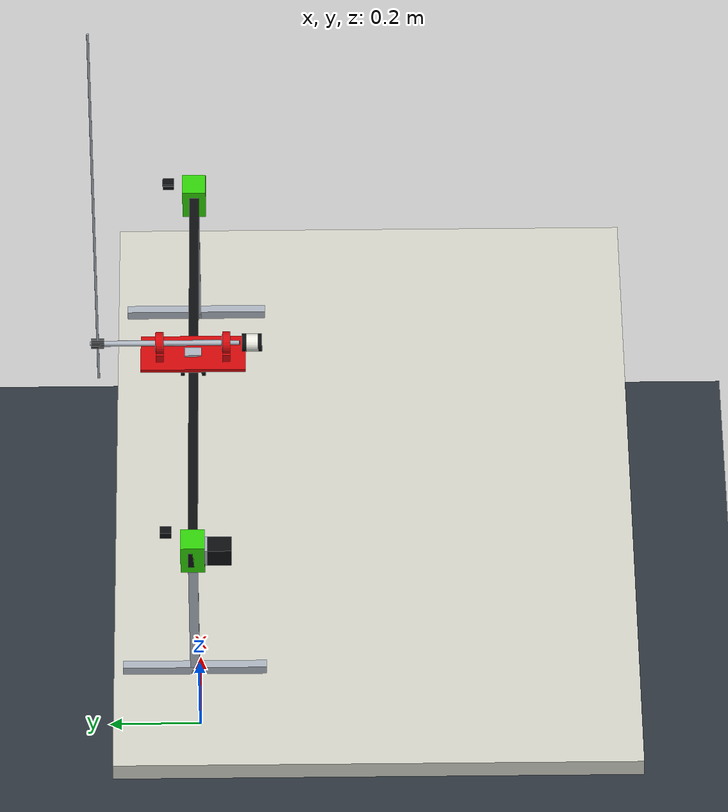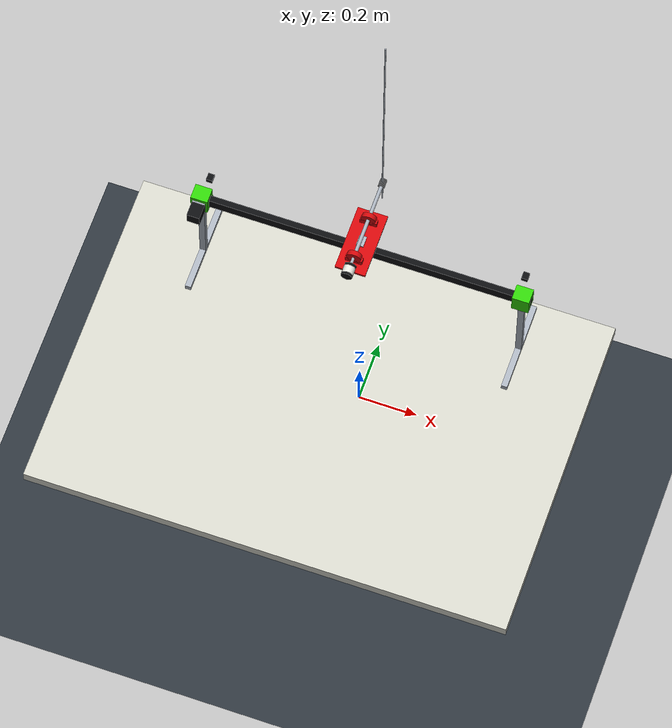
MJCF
<mujoco model="Pendolo reale su cinghia - quote misurate e stime esplicite">
  <!-- SI: metri, kg, secondi. MISURATI: bracci dal centro perno 0.877 / 0.100 m; diametro asta 0.005 m; diametro esterno raccordo nero 0.022 m (cavo, stampato 3D); corsa fra interventi 0.924 m. -->
  <compiler angle="radian" inertiafromgeom="true" />
  <option timestep=".002" gravity="0 0 -9.81" integrator="implicitfast">
    <flag filterparent="disable" />
  </option>
  <statistic center="0 0 1.05" extent="1.6" />
  <visual>
    <global offwidth="1200" offheight="1000" azimuth="-65" elevation="-15" />
    <headlight ambient=".5 .5 .5" diffuse=".7 .7 .7" />
  </visual>
  <default>
    <geom contype="1" conaffinity="1" friction=".6 .005 .0001" />
  </default>
  <worldbody>
    <light pos="0 1 3" dir="0 -0.2 -1" />
    <geom name="pavimento" type="plane" rgba=".17 .2 .23 1" size="3 3 .05" />
    <!-- Banco e telaio fissi indicativi. Il piano dell asta e davanti al bordo del banco. -->
    <geom name="banco" type="box" rgba=".8 .8 .76 1" pos="0 -.38 .72" size=".8 .55 .02" />
    <geom name="guida" type="box" rgba=".045 .05 .055 1" pos="0 0 1.1" size=".56 .01 .02" />
    <geom name="montante_sinistro" type="box" rgba=".65 .68 .72 1" pos="-0.532 0 .915" size=".01 .01 .175" />
    <geom name="piede_sinistro" type="box" rgba=".65 .68 .72 1" pos="-0.532 0 .75" size=".01 .15 .01" />
    <geom name="supporto_puleggia_sinistro" type="box" rgba=".18 .8 .025 1" pos="-0.532 0 1.1" size=".028 .025 .035" contype="0" conaffinity="0" />
    <geom name="puleggia_sinistro" type="cylinder" rgba=".045 .05 .055 1" fromto="-0.532 -.018 1.1 -0.532 .018 1.1" size=".01528" contype="0" conaffinity="0" />
    <!-- Arresto equivalente: faccia interna a +/-0.512 m; piastra semilarga 0.050 m: contatto a +/-0.462 m. -->
    <geom name="fine_sinistro" type="box" rgba=".045 .05 .055 1" pos="-0.522 .055 1.145" size=".01 .012 .008" />
    <geom name="leva_fine_sinistro" type="box" rgba=".65 .68 .72 1" pos="-0.512 .055 1.148" size=".001 .012 .001" contype="0" conaffinity="0" />
    <geom name="montante_destro" type="box" rgba=".65 .68 .72 1" pos="0.532 0 .915" size=".01 .01 .175" />
    <geom name="piede_destro" type="box" rgba=".65 .68 .72 1" pos="0.532 0 .75" size=".01 .15 .01" />
    <geom name="supporto_puleggia_destro" type="box" rgba=".18 .8 .025 1" pos="0.532 0 1.1" size=".028 .025 .035" contype="0" conaffinity="0" />
    <geom name="puleggia_destro" type="cylinder" rgba=".045 .05 .055 1" fromto="0.532 -.018 1.1 0.532 .018 1.1" size=".01528" contype="0" conaffinity="0" />
    <!-- Arresto equivalente: faccia interna a +/-0.512 m; piastra semilarga 0.050 m: contatto a +/-0.462 m. -->
    <geom name="fine_destro" type="box" rgba=".045 .05 .055 1" pos="0.522 .055 1.145" size=".01 .012 .008" />
    <geom name="leva_fine_destro" type="box" rgba=".65 .68 .72 1" pos="0.512 .055 1.148" size=".001 .012 .001" contype="0" conaffinity="0" />
    <geom name="cinghia_superiore" type="box" rgba=".045 .05 .055 1" pos="0 0 1.11528" size=".532 .003 .0007" contype="0" conaffinity="0" />
    <geom name="cinghia_inferiore" type="box" rgba=".045 .05 .055 1" pos="0 0 1.08472" size=".532 .003 .0007" contype="0" conaffinity="0" />
    <!-- Pulegge visuali: raggio primitivo ~15.28 mm coerente con 48 denti / passo 2 mm in stepper.py; parametri trasmissione ancora provvisori. -->
    <!-- Stepper sul lato X negativo: estremita destra nella vista usata dall utente; montaggio dietro la guida, Y negativo. -->
    <geom name="stepper_visuale" type="box" rgba=".045 .05 .055 1" pos="-.532 -.055 1.1" size=".021 .025 .021" contype="0" conaffinity="0" />
    <geom name="flangia_stepper" type="box" rgba=".65 .68 .72 1" pos="-.532 -.027 1.1" size=".021 .003 .021" contype="0" conaffinity="0" />
    <body name="carrello" pos="0 0 1.145">
      <joint name="scorrimento" type="slide" axis="1 0 0" limited="true" range="-.462 .462" damping=".1" />
      <!-- Masse traslanti senza rotazione: piastra alleggerita 90 g; supporti 2x25 g; cuscinetti 2x30 g; ruote 4x12 g; encoder/staffa 90 g; fissaggi 25 g. Totale 363 g. -->
      <geom name="corpo_carrello" type="box" rgba=".8 .025 .035 1" size=".05 .11 .004" mass=".09" />
      <geom name="staffa_posteriore" type="box" rgba=".8 .025 .035 1" pos="0 -0.07 .014" size=".028 .008 .01" mass=".025" />
      <geom name="alloggiamento_posteriore" type="cylinder" rgba=".8 .025 .035 1" fromto="0 -0.07800000000000001 .033 0 -0.062000000000000006 .033" size=".024" mass=".03" />
      <geom name="anello_posteriore" type="cylinder" rgba=".65 .68 .72 1" fromto="0 -0.062000000000000006 .033 0 -0.061000000000000006 .033" size=".018" mass="0" contype="0" conaffinity="0" />
      <geom name="staffa_anteriore" type="box" rgba=".8 .025 .035 1" pos="0 0.07 .014" size=".028 .008 .01" mass=".025" />
      <geom name="alloggiamento_anteriore" type="cylinder" rgba=".8 .025 .035 1" fromto="0 0.062000000000000006 .033 0 0.07800000000000001 .033" size=".024" mass=".03" />
      <geom name="anello_anteriore" type="cylinder" rgba=".65 .68 .72 1" fromto="0 0.07800000000000001 .033 0 0.079 .033" size=".018" mass="0" contype="0" conaffinity="0" />
      <geom name="ruota_-0.034_-0.022" type="cylinder" rgba=".045 .05 .055 1" fromto="-0.034 -0.026 -.014 -0.034 -0.018 -.014" size=".011" mass=".012" contype="0" conaffinity="0" />
      <geom name="ruota_-0.034_0.022" type="cylinder" rgba=".045 .05 .055 1" fromto="-0.034 0.018 -.014 -0.034 0.026 -.014" size=".011" mass=".012" contype="0" conaffinity="0" />
      <geom name="ruota_0.034_-0.022" type="cylinder" rgba=".045 .05 .055 1" fromto="0.034 -0.026 -.014 0.034 -0.018 -.014" size=".011" mass=".012" contype="0" conaffinity="0" />
      <geom name="ruota_0.034_0.022" type="cylinder" rgba=".045 .05 .055 1" fromto="0.034 0.018 -.014 0.034 0.026 -.014" size=".011" mass=".012" contype="0" conaffinity="0" />
      <geom name="encoder" type="cylinder" rgba=".045 .05 .055 1" fromto="0 -.145 .033 0 -.103 .033" size=".019" mass=".09" />
      <geom name="etichetta_encoder" type="cylinder" rgba=".88 .88 .85 1" fromto="0 -.137 .033 0 -.112 .033" size=".0192" mass="0" contype="0" conaffinity="0" />
      <geom name="fissaggi_carrello" type="box" rgba=".65 .68 .72 1" pos="0 0 .006" size=".012 .018 .002" mass=".025" contype="0" conaffinity="0" />
      <body name="pendolo" pos="0 .2 .033">
        <!-- Zero = braccio lungo in alto; keyframe/reset a pi = braccio lungo in basso. Albero e mozzo solidali all asta: contribuiscono all inerzia rotante e alla massa traslante. -->
        <joint name="rotazione" type="hinge" axis="0 1 0" damping=".01" />
        <geom name="perno" type="cylinder" rgba=".65 .68 .72 1" fromto="0 -.26 0 0 0 0" size=".006" density="7850" contype="0" conaffinity="0" />
        <geom name="giunto_encoder" type="cylinder" rgba=".65 .68 .72 1" fromto="0 -.298 0 0 -.26 0" size=".005" mass=".008" contype="0" conaffinity="0" />
        <geom name="mozzo_asta" type="box" rgba=".045 .05 .055 1" pos="0.0085 0 0.0" size=".0025 .013 0.0010781885436251665" euler="0 -0.0 0" mass="0.00014102805771505424" />
        <geom name="mozzo_settore_1" type="box" rgba=".045 .05 .055 1" pos="0.008336674883427458 0 0.0016582677371370902" size=".0025 .013 0.0010781885436251665" euler="0 -0.19634954084936207 0" mass="0.00014102805771505424" />
        <geom name="mozzo_settore_2" type="box" rgba=".045 .05 .055 1" pos="0.007852976026345939 0 0.0032528091751032632" size=".0025 .013 0.0010781885436251665" euler="0 -0.39269908169872414 0" mass="0.00014102805771505424" />
        <geom name="mozzo_settore_3" type="box" rgba=".045 .05 .055 1" pos="0.007067491704571635 0 0.004722346980666619" size=".0025 .013 0.0010781885436251665" euler="0 -0.5890486225480862 0" mass="0.00014102805771505424" />
        <geom name="mozzo_settore_4" type="box" rgba=".045 .05 .055 1" pos="0.006010407640085655 0 0.0060104076400856535" size=".0025 .013 0.0010781885436251665" euler="0 -0.7853981633974483 0" mass="0.00014102805771505424" />
        <geom name="mozzo_settore_5" type="box" rgba=".045 .05 .055 1" pos="0.00472234698066662 0 0.007067491704571635" size=".0025 .013 0.0010781885436251665" euler="0 -0.9817477042468103 0" mass="0.00014102805771505424" />
        <geom name="mozzo_settore_6" type="box" rgba=".045 .05 .055 1" pos="0.0032528091751032637 0 0.007852976026345939" size=".0025 .013 0.0010781885436251665" euler="0 -1.1780972450961724 0" mass="0.00014102805771505424" />
        <geom name="mozzo_settore_7" type="box" rgba=".045 .05 .055 1" pos="0.001658267737137091 0 0.008336674883427458" size=".0025 .013 0.0010781885436251665" euler="0 -1.3744467859455345 0" mass="0.00014102805771505424" />
        <geom name="mozzo_settore_8" type="box" rgba=".045 .05 .055 1" pos="5.204748896376251e-19 0 0.0085" size=".0025 .013 0.0010781885436251665" euler="0 -1.5707963267948966 0" mass="0.00014102805771505424" />
        <geom name="mozzo_settore_9" type="box" rgba=".045 .05 .055 1" pos="-0.0016582677371370898 0 0.008336674883427458" size=".0025 .013 0.0010781885436251665" euler="0 -1.7671458676442586 0" mass="0.00014102805771505424" />
        <geom name="mozzo_settore_10" type="box" rgba=".045 .05 .055 1" pos="-0.003252809175103263 0 0.007852976026345939" size=".0025 .013 0.0010781885436251665" euler="0 -1.9634954084936207 0" mass="0.00014102805771505424" />
        <geom name="mozzo_settore_11" type="box" rgba=".045 .05 .055 1" pos="-0.004722346980666617 0 0.007067491704571636" size=".0025 .013 0.0010781885436251665" euler="0 -2.1598449493429825 0" mass="0.00014102805771505424" />
        <geom name="mozzo_settore_12" type="box" rgba=".045 .05 .055 1" pos="-0.0060104076400856535 0 0.006010407640085655" size=".0025 .013 0.0010781885436251665" euler="0 -2.356194490192345 0" mass="0.00014102805771505424" />
        <geom name="mozzo_settore_13" type="box" rgba=".045 .05 .055 1" pos="-0.007067491704571636 0 0.004722346980666619" size=".0025 .013 0.0010781885436251665" euler="0 -2.552544031041707 0" mass="0.00014102805771505424" />
        <geom name="mozzo_settore_14" type="box" rgba=".045 .05 .055 1" pos="-0.007852976026345939 0 0.0032528091751032645" size=".0025 .013 0.0010781885436251665" euler="0 -2.748893571891069 0" mass="0.00014102805771505424" />
        <geom name="mozzo_settore_15" type="box" rgba=".045 .05 .055 1" pos="-0.008336674883427458 0 0.0016582677371370933" size=".0025 .013 0.0010781885436251665" euler="0 -2.945243112740431 0" mass="0.00014102805771505424" />
        <geom name="mozzo_settore_16" type="box" rgba=".045 .05 .055 1" pos="-0.0085 0 1.0409497792752502e-18" size=".0025 .013 0.0010781885436251665" euler="0 -3.141592653589793 0" mass="0.00014102805771505424" />
        <geom name="mozzo_settore_17" type="box" rgba=".045 .05 .055 1" pos="-0.008336674883427458 0 -0.0016582677371370911" size=".0025 .013 0.0010781885436251665" euler="0 -3.3379421944391554 0" mass="0.00014102805771505424" />
        <geom name="mozzo_settore_18" type="box" rgba=".045 .05 .055 1" pos="-0.007852976026345939 0 -0.0032528091751032624" size=".0025 .013 0.0010781885436251665" euler="0 -3.5342917352885173 0" mass="0.00014102805771505424" />
        <geom name="mozzo_settore_19" type="box" rgba=".045 .05 .055 1" pos="-0.007067491704571637 0 -0.004722346980666617" size=".0025 .013 0.0010781885436251665" euler="0 -3.730641276137879 0" mass="0.00014102805771505424" />
        <geom name="mozzo_settore_20" type="box" rgba=".045 .05 .055 1" pos="-0.006010407640085656 0 -0.0060104076400856535" size=".0025 .013 0.0010781885436251665" euler="0 -3.9269908169872414 0" mass="0.00014102805771505424" />
        <geom name="mozzo_settore_21" type="box" rgba=".045 .05 .055 1" pos="-0.004722346980666619 0 -0.007067491704571635" size=".0025 .013 0.0010781885436251665" euler="0 -4.123340357836604 0" mass="0.00014102805771505424" />
        <geom name="mozzo_settore_22" type="box" rgba=".045 .05 .055 1" pos="-0.003252809175103268 0 -0.007852976026345935" size=".0025 .013 0.0010781885436251665" euler="0 -4.319689898685965 0" mass="0.00014102805771505424" />
        <geom name="mozzo_settore_23" type="box" rgba=".045 .05 .055 1" pos="-0.0016582677371370937 0 -0.008336674883427458" size=".0025 .013 0.0010781885436251665" euler="0 -4.516039439535327 0" mass="0.00014102805771505424" />
        <geom name="mozzo_settore_24" type="box" rgba=".045 .05 .055 1" pos="-1.5614246689128753e-18 0 -0.0085" size=".0025 .013 0.0010781885436251665" euler="0 -4.71238898038469 0" mass="0.00014102805771505424" />
        <geom name="mozzo_settore_25" type="box" rgba=".045 .05 .055 1" pos="0.0016582677371370907 0 -0.008336674883427458" size=".0025 .013 0.0010781885436251665" euler="0 -4.908738521234052 0" mass="0.00014102805771505424" />
        <geom name="mozzo_settore_26" type="box" rgba=".045 .05 .055 1" pos="0.0032528091751032654 0 -0.007852976026345937" size=".0025 .013 0.0010781885436251665" euler="0 -5.105088062083414 0" mass="0.00014102805771505424" />
        <geom name="mozzo_settore_27" type="box" rgba=".045 .05 .055 1" pos="0.004722346980666616 0 -0.007067491704571637" size=".0025 .013 0.0010781885436251665" euler="0 -5.301437602932776 0" mass="0.00014102805771505424" />
        <geom name="mozzo_settore_28" type="box" rgba=".045 .05 .055 1" pos="0.006010407640085653 0 -0.006010407640085656" size=".0025 .013 0.0010781885436251665" euler="0 -5.497787143782138 0" mass="0.00014102805771505424" />
        <geom name="mozzo_settore_29" type="box" rgba=".045 .05 .055 1" pos="0.007067491704571635 0 -0.004722346980666619" size=".0025 .013 0.0010781885436251665" euler="0 -5.6941366846315 0" mass="0.00014102805771505424" />
        <geom name="mozzo_settore_30" type="box" rgba=".045 .05 .055 1" pos="0.007852976026345935 0 -0.0032528091751032684" size=".0025 .013 0.0010781885436251665" euler="0 -5.890486225480862 0" mass="0.00014102805771505424" />
        <geom name="mozzo_settore_31" type="box" rgba=".045 .05 .055 1" pos="0.008336674883427458 0 -0.0016582677371370941" size=".0025 .013 0.0010781885436251665" euler="0 -6.086835766330224 0" mass="0.00014102805771505424" />
        <geom name="vite_mozzo" type="cylinder" rgba=".65 .68 .72 1" fromto="0 .013 0 0 .016 0" size=".004" mass=".001" contype="0" conaffinity="0" />
        <!-- Asta uniforme: stessa densita sui due bracci. Lunghezza totale 0.977 m; massa con ipotesi acciaio pieno circa 0.1506 kg. -->
        <geom name="asta" type="cylinder" rgba=".65 .68 .72 1" fromto="0 0 0 0 0 .877" size=".0025" density="7850" />
        <geom name="asta_opposta" type="cylinder" rgba=".65 .68 .72 1" fromto="0 0 -.1 0 0 0" size=".0025" density="7850" />
      </body>
    </body>
  </worldbody>
  <actuator>
    <motor name="forza_carrello" joint="scorrimento" gear="1" ctrllimited="true" ctrlrange="-20 20" />
  </actuator>
  <keyframe>
    <key name="inizio_dal_basso" qpos="0 3.141592653589793" qvel="0 0" />
  </keyframe>
</mujoco>
